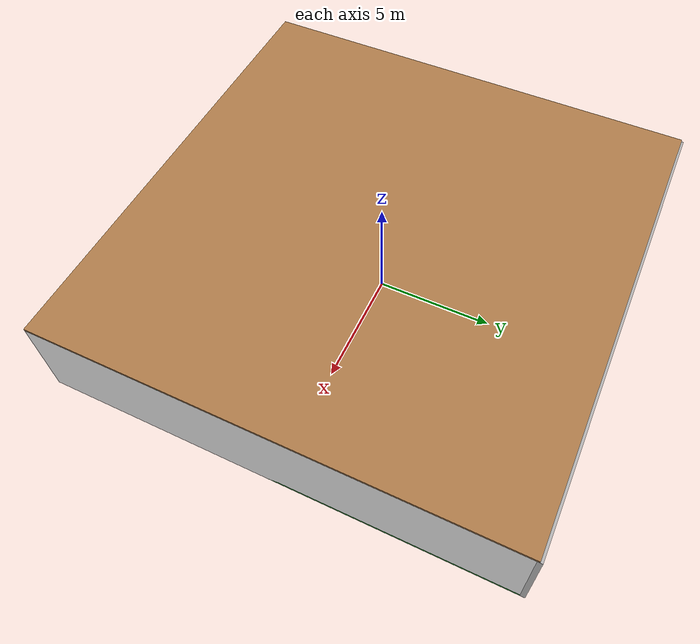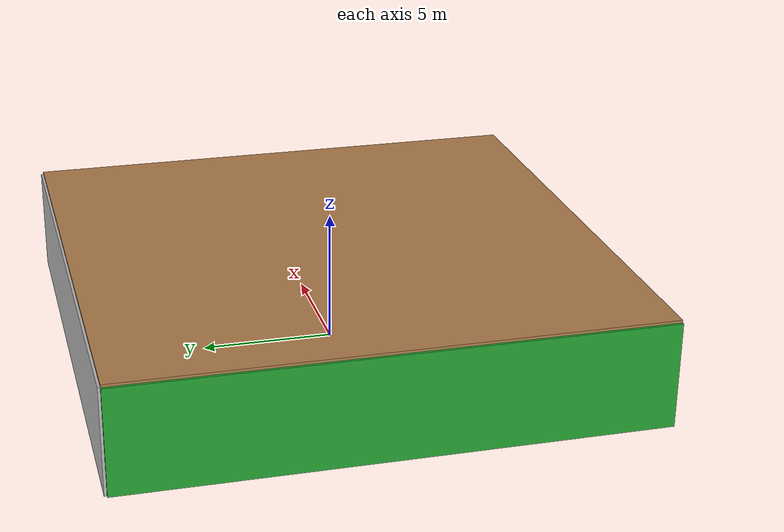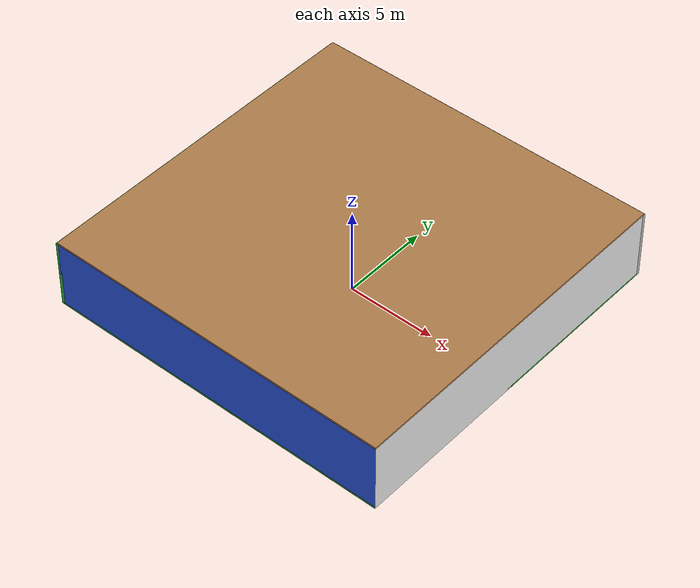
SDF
<sdf version="1.4">
 <world name="default">
  <physics type="ode">
   <max_step_size>0.001</max_step_size>
   <real_time_factor>1</real_time_factor>
   <real_time_update_rate>1000</real_time_update_rate>
   <gravity>0 0 -9.8</gravity>
  </physics>
  <scene><ambient>0.4 0.4 0.4 1</ambient><background>0.7 0.7 0.7 1</background><shadows>1</shadows></scene>
  <model name="Surrounding">
   <static>1</static>
   <link name="Ceiling">
    <collision name="Ceiling_Collision"><geometry><box><size>20 20 0.1</size></box></geometry></collision>
    <visual name="Ceiling_Visual">
     <geometry><box><size>20 20 0.1</size></box></geometry>
     <material>
      <script><uri>file://media/materials/scripts/gazebo.material</uri><name>Gazebo/Wood</name></script>
     </material>
    </visual>
    <pose>0 0 4.05 0 0 0</pose>
   </link>
   <link name="Wall_South">
    <collision name="Wall_South_Collision">
     <geometry><box><size>20 0 4</size></box></geometry>
     <pose>0 0 2 0 -0 0</pose>
    </collision>
    <visual name="Wall_South_Visual">
     <pose>0 0 2 0 -0 0</pose>
     <geometry><box><size>20 0 4</size></box></geometry>
     <material>
      <script><uri>file://media/materials/scripts/gazebo.material</uri><name>Gazebo/Blue</name></script>
     </material>
    </visual>
    <velocity_decay><linear>0</linear><angular>0</angular></velocity_decay>
    <pose>0 -10 0 0 -0 0</pose>
   </link>
   <link name="Wall_East">
    <collision name="Wall_21_Collision">
     <geometry><box><size>20 0 4</size></box></geometry>
     <pose>0 0 2 0 -0 0</pose>
    </collision>
    <visual name="Wall_21_Visual">
     <pose>0 0 2 0 -0 0</pose>
     <geometry><box><size>20 0 4</size></box></geometry>
     <material>
      <script><uri>file://media/materials/scripts/gazebo.material</uri><name>Gazebo/White</name></script>
     </material>
    </visual>
    <velocity_decay><linear>0</linear><angular>0</angular></velocity_decay>
    <pose>10 0 0 0 -0 1.5708</pose>
   </link>
   <link name="Wall_North">
    <collision name="Wall_22_Collision">
     <geometry><box><size>20 0.2 4</size></box></geometry>
     <pose>0 0 2 0 -0 0</pose>
    </collision>
    <visual name="Wall_22_Visual">
     <pose>0 0 2 0 -0 0</pose>
     <geometry><box><size>20 0.2 4</size></box></geometry>
     <material>
      <script><uri>file://media/materials/scripts/gazebo.material</uri><name>Gazebo/CloudySky</name></script>
     </material>
    </visual>
    <velocity_decay><linear>0</linear><angular>0</angular></velocity_decay>
    <pose>0 10 0 0 -0 0</pose>
   </link>
   <link name="Wall_West">
    <collision name="Wall_23_Collision">
     <geometry><box><size>20 0.2 4</size></box></geometry>
     <pose>0 0 2 0 -0 0</pose>
    </collision>
    <visual name="Wall_23_Visual">
     <pose>0 0 2 0 -0 0</pose>
     <geometry><box><size>20 0.2 4</size></box></geometry>
     <material>
      <script><uri>file://media/materials/scripts/gazebo.material</uri><name>Gazebo/Green</name></script>
     </material>
    </visual>
    <velocity_decay><linear>0</linear><angular>0</angular></velocity_decay>
    <pose>-10 0 0 0 0 -1.5708</pose>
   </link>
   <link name="Ground_link">
    <collision name="collision">
     <pose>0 0 .05 0 -0 0</pose>
     <geometry><box><size>20 20 0.1</size></box></geometry>
    </collision>
    <visual name="visual">
     <pose>0 0 .05 0 -0 0</pose>
     <geometry><box><size>20 20 0.1</size></box></geometry>
     <material>
      <script><uri>file://media/materials/scripts/gazebo.material</uri><name>Gazebo/GreenGlow</name></script>
     </material>
    </visual>
   </link>
   <static>1</static>
  </model>
  <spherical_coordinates>
   <surface_model>EARTH_WGS84</surface_model>
   <latitude_deg>0</latitude_deg>
   <longitude_deg>0</longitude_deg>
   <elevation>0</elevation>
   <heading_deg>0</heading_deg>
  </spherical_coordinates>
  <light name="lightball_0" type="diffuse">
   <diffuse>0.8 0.8 0.8 1</diffuse>
   <specular>0.2 0.2 0.2 1</specular>
   <attenuation>
    <range>100</range>
    <constant>0.7</constant>
    <linear>0.01</linear>
    <quadratic>0.001</quadratic>
   </attenuation>
   <direction>-0.5 0.1 -0.9</direction>
   <pose>-9.77380606333 9.20674432501 2.3978888615 0 0 0</pose>
  </light>
  <light name="lightball_1" type="diffuse">
   <diffuse>0.8 0.8 0.8 1</diffuse>
   <specular>0.2 0.2 0.2 1</specular>
   <attenuation>
    <range>100</range>
    <constant>0.7</constant>
    <linear>0.01</linear>
    <quadratic>0.001</quadratic>
   </attenuation>
   <direction>-0.5 0.1 -0.9</direction>
   <pose>-3.72078493821 -4.65202873356 2.81305977722 0 0 0</pose>
  </light>
  <light name="lightball_2" type="diffuse">
   <diffuse>0.8 0.8 0.8 1</diffuse>
   <specular>0.2 0.2 0.2 1</specular>
   <attenuation>
    <range>100</range>
    <constant>0.7</constant>
    <linear>0.01</linear>
    <quadratic>0.001</quadratic>
   </attenuation>
   <direction>-0.5 0.1 -0.9</direction>
   <pose>3.81103558983 -1.78771209196 2.99138667638 0 0 0</pose>
  </light>
  <light name="lightball_3" type="diffuse">
   <diffuse>0.8 0.8 0.8 1</diffuse>
   <specular>0.2 0.2 0.2 1</specular>
   <attenuation>
    <range>100</range>
    <constant>0.7</constant>
    <linear>0.01</linear>
    <quadratic>0.001</quadratic>
   </attenuation>
   <direction>-0.5 0.1 -0.9</direction>
   <pose>6.81101929176 -8.82437713219 1.16555474738 0 0 0</pose>
  </light>
  <light name="lightball_4" type="diffuse">
   <diffuse>0.8 0.8 0.8 1</diffuse>
   <specular>0.2 0.2 0.2 1</specular>
   <attenuation>
    <range>100</range>
    <constant>0.7</constant>
    <linear>0.01</linear>
    <quadratic>0.001</quadratic>
   </attenuation>
   <direction>-0.5 0.1 -0.9</direction>
   <pose>-1.79206361029 -8.61773625888 3.10620657354 0 0 0</pose>
  </light>
  <include><uri>model://cabinet</uri><pose>-7.07359237021 -6.97570454741 0 0 0 2.16892845064</pose></include>
  <include>
   <uri>model://textured_shapes</uri>
   <pose>-7.37936739375 2.20204091981 0 0 0 1.9881645518</pose>
  </include>
  <include><uri>model://table</uri><pose>-4.99984902362 -4.30307318034 0 0 0 2.51832914487</pose></include>
  <include><uri>model://cabinet</uri><pose>-5.12568235231 1.6111713579 0 0 0 2.8790423934</pose></include>
  <include><uri>model://table</uri><pose>-4.50671168444 4.92076377748 0 0 0 2.01994043246</pose></include>
  <include><uri>model://cabinet</uri><pose>-1.27976215327 3.84367548003 0 0 0 2.69238500578</pose></include>
  <include><uri>model://cabinet</uri><pose>1.00985672099 -7.36256343413 0 0 0 0.628852672074</pose></include>
  <include>
   <uri>model://robocup_3Dsim_goal</uri>
   <pose>5.30597917609 7.16835294986 0 0 0 0.987076761677</pose>
  </include>
  <include>
   <uri>model://construction_cone</uri>
   <pose>8.40188374438 7.82466886708 0 0 0 2.24595713039</pose>
  </include>
 </world>
</sdf>

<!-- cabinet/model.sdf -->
<sdf version="1.5">
  <model name="cabinet">
    <static>true</static>
    <link name="cabinet_bottom_plate">
      <inertial>
        <pose>0 0 -1 0 0 0</pose>
        <inertia>
          <ixx>2.050000</ixx>
          <ixy>0</ixy>
          <ixz>0</ixz>
          <iyy>2.050000</iyy>
          <iyz>0</iyz>
          <izz>2.050000</izz>
        </inertia>
        <mass>25.000000</mass>
      </inertial>
      <collision name="cabinet_bottom_plate_geom">
        <pose>0 0 0.010000 0 0 0</pose>
        <geometry>
          <box>
            <size>0.450000 0.450000 0.020000</size>
          </box>
        </geometry>
      </collision>
      <visual name="cabinet_bottom_plate_geom_visual">
        <pose>0 0 0.010000 0 0 0</pose>
        <geometry>
          <box>
            <size>0.450000 0.450000 0.020000</size>
          </box>
        </geometry>
        <material>
          <script>
            <uri>model://media/materials/scripts/gazebo.material</uri>
            <name>Gazebo/Wood</name>
          </script>
        </material>
      </visual>
      <collision name="cabinet_bottom_plate_geom_cabinet_back_plate">
        <pose>0.235000 0 0.510000 0 0 0</pose>
        <geometry>
          <box>
            <size>0.020000 0.450000 1.020000</size>
          </box>
        </geometry>
      </collision>
      <visual name="cabinet_bottom_plate_geom_cabinet_back_plate_visual">
        <pose>0.235000 0 0.510000 0 0 0</pose>
        <geometry>
          <box>
            <size>0.020000 0.450000 1.020000</size>
          </box>
        </geometry>
        <material>
          <script>
            <uri>model://media/materials/scripts/gazebo.material</uri>
            <name>Gazebo/Wood</name>
          </script>
        </material>
      </visual>
      <collision name="cabinet_bottom_plate_geom_cabinet_left_plate">
        <pose>0 0.235000 0.510000 0 0 0</pose>
        <geometry>
          <box>
            <size>0.450000 0.020000 1.020000</size>
          </box>
        </geometry>
      </collision>
      <visual name="cabinet_bottom_plate_geom_cabinet_left_plate_visual">
        <pose>0 0.235000 0.510000 0 0 0</pose>
        <geometry>
          <box>
            <size>0.450000 0.020000 1.020000</size>
          </box>
        </geometry>
        <material>
          <script>
            <uri>model://media/materials/scripts/gazebo.material</uri>
            <name>Gazebo/Wood</name>
          </script>
        </material>
      </visual>
      <collision name="cabinet_bottom_plate_geom_cabinet_middle_plate">
        <pose>0 0 0.510000 0 0 0</pose>
        <geometry>
          <box>
            <size>0.450000 0.450000 0.020000</size>
          </box>
        </geometry>
      </collision>
      <visual name="cabinet_bottom_plate_geom_cabinet_middle_plate_visual">
        <pose>0 0 0.510000 0 0 0</pose>
        <geometry>
          <box>
            <size>0.450000 0.450000 0.020000</size>
          </box>
        </geometry>
        <material>
          <script>
            <uri>model://media/materials/scripts/gazebo.material</uri>
            <name>Gazebo/Wood</name>
          </script>
        </material>
      </visual>
      <collision name="cabinet_bottom_plate_geom_cabinet_right_plate">
        <pose>0 -0.235000 0.510000 0 0 0</pose>
        <geometry>
          <box>
            <size>0.450000 0.020000 1.020000</size>
          </box>
        </geometry>
      </collision>
      <visual name="cabinet_bottom_plate_geom_cabinet_right_plate_visual">
        <pose>0 -0.235000 0.510000 0 0 0</pose>
        <geometry>
          <box>
            <size>0.450000 0.020000 1.020000</size>
          </box>
        </geometry>
        <material>
          <script>
            <uri>model://media/materials/scripts/gazebo.material</uri>
            <name>Gazebo/Wood</name>
          </script>
        </material>
      </visual>
      <collision name="cabinet_bottom_plate_geom_cabinet_top_plate">
        <pose>0 0 1.010000 0 0 0</pose>
        <geometry>
          <box>
            <size>0.450000 0.450000 0.020000</size>
          </box>
        </geometry>
      </collision>
      <visual name="cabinet_bottom_plate_geom_cabinet_top_plate_visual">
        <pose>0 0 1.010000 0 0 0</pose>
        <geometry>
          <box>
            <size>0.450000 0.450000 0.020000</size>
          </box>
        </geometry>
        <material>
          <script>
            <uri>model://media/materials/scripts/gazebo.material</uri>
            <name>Gazebo/Wood</name>
          </script>
        </material>
      </visual>
    </link>
  </model>
</sdf>

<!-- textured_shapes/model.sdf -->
<sdf version="1.6">
  <model name="textured_shapes">
    <pose>0 0 0.5 0 0 0</pose>
    <link name="box">
      <pose>0 -1.5 0 0 0 0</pose>
      <collision name="collision">
        <geometry>
          <box>
            <size>1 1 1</size>
          </box>
        </geometry>
      </collision>
      <visual name="visual">
        <geometry>
          <box>
            <size>1 1 1</size>
          </box>
        </geometry>
        <material>
          <script>
            <uri>model://../model_source/models/textured_shapes/materials/scripts</uri>
            <uri>model://../model_source/models/textured_shapes/materials/textures</uri>
            <name>TexturedShape/Squares</name>
          </script>
        </material>
      </visual>
    </link>
    <link name="sphere">
      <collision name="collision">
        <geometry>
          <sphere>
            <radius>0.5</radius>
          </sphere>
        </geometry>
      </collision>
      <visual name="visual">
        <geometry>
          <sphere>
            <radius>0.5</radius>
          </sphere>
        </geometry>
        <material>
          <script>
            <uri>model://../model_source/models/textured_shapes/materials/scripts</uri>
            <uri>model://../model_source/models/textured_shapes/materials/textures</uri>
            <name>TexturedShape/Squares</name>
          </script>
        </material>
      </visual>
    </link>
    <link name="cylinder">
      <pose>0 1.5 0 0 0 0</pose>
      <collision name="collision">
        <geometry>
          <cylinder>
            <radius>0.5</radius>
            <length>1</length>
          </cylinder>
        </geometry>
      </collision>
      <visual name="visual">
        <geometry>
          <cylinder>
            <radius>0.5</radius>
            <length>1</length>
          </cylinder>
        </geometry>
        <material>
          <script>
            <uri>model://../model_source/models/textured_shapes/materials/scripts</uri>
            <uri>model://../model_source/models/textured_shapes/materials/textures</uri>
            <name>TexturedShape/Squares</name>
          </script>
        </material>
      </visual>
    </link>
  </model>
</sdf>

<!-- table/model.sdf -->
<sdf version="1.5">
  <model name="table">
    <static>true</static>
    <link name="link">
      <collision name="surface">
        <pose>0 0 1.0 0 0 0</pose>
        <geometry>
          <box>
            <size>1.5 0.8 0.03</size>
          </box>
        </geometry>
        <surface>
          <friction>
            <ode>
              <mu>0.6</mu>
              <mu2>0.6</mu2>
            </ode>
          </friction>
        </surface>
      </collision>
      <visual name="visual1">
        <pose>0 0 1.0 0 0 0</pose>
        <geometry>
          <box>
            <size>1.5 0.8 0.03</size>
          </box>
        </geometry>
        <material>
          <script>
            <uri>model://media/materials/scripts/gazebo.material</uri>
            <name>Gazebo/Wood</name>
          </script>
        </material>
      </visual>
      <collision name="front_left_leg">
        <pose>0.68 0.38 0.5 0 0 0</pose>
        <geometry>
          <cylinder>
            <radius>0.02</radius>
            <length>1.0</length>
          </cylinder>
        </geometry>
      </collision>
      <visual name="front_left_leg">
        <pose>0.68 0.38 0.5 0 0 0</pose>
        <geometry>
          <cylinder>
            <radius>0.02</radius>
            <length>1.0</length>
          </cylinder>
        </geometry>
        <material>
          <script>
            <uri>model://media/materials/scripts/gazebo.material</uri>
            <name>Gazebo/Grey</name>
          </script>
        </material>
      </visual>
      <collision name="front_right_leg">
        <pose>0.68 -0.38 0.5 0 0 0</pose>
        <geometry>
          <cylinder>
            <radius>0.02</radius>
            <length>1.0</length>
          </cylinder>
        </geometry>
      </collision>
      <visual name="front_right_leg">
        <pose>0.68 -0.38 0.5 0 0 0</pose>
        <geometry>
          <cylinder>
            <radius>0.02</radius>
            <length>1.0</length>
          </cylinder>
        </geometry>
        <material>
          <script>
            <uri>model://media/materials/scripts/gazebo.material</uri>
            <name>Gazebo/Grey</name>
          </script>
        </material>
      </visual>
      <collision name="back_right_leg">
        <pose>-0.68 -0.38 0.5 0 0 0</pose>
        <geometry>
          <cylinder>
            <radius>0.02</radius>
            <length>1.0</length>
          </cylinder>
        </geometry>
      </collision>
      <visual name="back_right_leg">
        <pose>-0.68 -0.38 0.5 0 0 0</pose>
        <geometry>
          <cylinder>
            <radius>0.02</radius>
            <length>1.0</length>
          </cylinder>
        </geometry>
        <material>
          <script>
            <uri>model://media/materials/scripts/gazebo.material</uri>
            <name>Gazebo/Grey</name>
          </script>
        </material>
      </visual>
      <collision name="back_left_leg">
        <pose>-0.68 0.38 0.5 0 0 0</pose>
        <geometry>
          <cylinder>
            <radius>0.02</radius>
            <length>1.0</length>
          </cylinder>
        </geometry>
      </collision>
      <visual name="back_left_leg">
        <pose>-0.68 0.38 0.5 0 0 0</pose>
        <geometry>
          <cylinder>
            <radius>0.02</radius>
            <length>1.0</length>
          </cylinder>
        </geometry>
        <material>
          <script>
            <uri>model://media/materials/scripts/gazebo.material</uri>
            <name>Gazebo/Grey</name>
          </script>
        </material>
      </visual>
    </link>
  </model>
</sdf>

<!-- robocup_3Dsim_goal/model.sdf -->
<sdf version="1.5">
  <model name="robocup_3d_goal">
    <static>true</static>
    <link name="left_post">
      <pose>0 1.05 0.45 0 0 0</pose>
      <collision name="collision">
        <geometry>
          <cylinder>
            <radius>0.05</radius>
            <length>0.9</length>
          </cylinder>
        </geometry>
      </collision>
      <visual name="visual">
        <geometry>
          <cylinder>
            <radius>0.05</radius>
            <length>0.9</length>
          </cylinder>
        </geometry>
        <material>
          <script>
            <uri>file://media/materials/scripts/gazebo.material</uri>
            <name>Gazebo/ZincYellow</name>
          </script>
        </material>
      </visual>
    </link>
    <link name="left_support_horiz_lower">
      <pose>0.30 1.05 0.01 0 0 0</pose>
      <collision name="collision">
        <geometry>
          <box>
            <size>0.50 0.02 0.02</size>
          </box>
        </geometry>
      </collision>
      <visual name="visual">
        <geometry>
          <box>
            <size>0.50 0.02 0.02</size>
          </box>
        </geometry>
        <material>
          <script>
            <uri>file://media/materials/scripts/gazebo.material</uri>
            <name>Gazebo/White</name>
          </script>
        </material>
      </visual>
    </link>
    <link name="left_support_horiz_upper">
      <pose>0.30 1.05 0.79 0 0 0</pose>
      <collision name="collision">
        <geometry>
          <box>
            <size>0.50 0.02 0.02</size>
          </box>
        </geometry>
      </collision>
      <visual name="visual">
        <geometry>
          <box>
            <size>0.50 0.02 0.02</size>
          </box>
        </geometry>
        <material>
          <script>
            <uri>file://media/materials/scripts/gazebo.material</uri>
            <name>Gazebo/White</name>
          </script>
        </material>
      </visual>
    </link>
    <link name="left_support_vertical">
      <pose>0.56 1.05 0.4 0 1.5708 0</pose>
      <collision name="collision">
        <geometry>
          <box>
            <size>0.80 0.02 0.02</size>
          </box>
        </geometry>
      </collision>
      <visual name="visual">
        <geometry>
          <box>
            <size>0.80 0.02 0.02</size>
          </box>
        </geometry>
        <material>
          <script>
            <uri>file://media/materials/scripts/gazebo.material</uri>
            <name>Gazebo/White</name>
          </script>
        </material>
      </visual>
    </link>
    <link name="right_support_horiz_lower">
      <pose>0.30 -1.05 0.01 0 0 0</pose>
      <collision name="collision">
        <geometry>
          <box>
            <size>0.50 0.02 0.02</size>
          </box>
        </geometry>
      </collision>
      <visual name="visual">
        <geometry>
          <box>
            <size>0.50 0.02 0.02</size>
          </box>
        </geometry>
        <material>
          <script>
            <uri>file://media/materials/scripts/gazebo.material</uri>
            <name>Gazebo/White</name>
          </script>
        </material>
      </visual>
    </link>
    <link name="right_support_horiz_upper">
      <pose>0.30 -1.05 0.79 0 0 0</pose>
      <collision name="collision">
        <geometry>
          <box>
            <size>0.50 0.02 0.02</size>
          </box>
        </geometry>
      </collision>
      <visual name="visual">
        <geometry>
          <box>
            <size>0.50 0.02 0.02</size>
          </box>
        </geometry>
        <material>
          <script>
            <uri>file://media/materials/scripts/gazebo.material</uri>
            <name>Gazebo/White</name>
          </script>
        </material>
      </visual>
    </link>
    <link name="right_support_vertical">
      <pose>0.56 -1.05 0.4 0 1.5708 0</pose>
      <collision name="collision">
        <geometry>
          <box>
            <size>0.80 0.02 0.02</size>
          </box>
        </geometry>
      </collision>
      <visual name="visual">
        <geometry>
          <box>
            <size>0.80 0.02 0.02</size>
          </box>
        </geometry>
        <material>
          <script>
            <uri>file://media/materials/scripts/gazebo.material</uri>
            <name>Gazebo/White</name>
          </script>
        </material>
      </visual>
    </link>
    <link name="center_support_horiz_lower">
      <pose>0.56 0 0.01 0 1.5708 0</pose>
      <collision name="collision">
        <geometry>
          <box>
            <size>0.02 2.08 0.02</size>
          </box>
        </geometry>
      </collision>
      <visual name="visual">
        <geometry>
          <box>
            <size>0.02 2.08 0.02</size>
          </box>
        </geometry>
        <material>
          <script>
            <uri>file://media/materials/scripts/gazebo.material</uri>
            <name>Gazebo/White</name>
          </script>
        </material>
      </visual>
    </link>
    <link name="center_support_horiz_upper">
      <pose>0.56 0 0.79 0 1.5708 0</pose>
      <collision name="collision">
        <geometry>
          <box>
            <size>0.02 2.08 0.02</size>
          </box>
        </geometry>
      </collision>
      <visual name="visual">
        <geometry>
          <box>
            <size>0.02 2.08 0.02</size>
          </box>
        </geometry>
        <material>
          <script>
            <uri>file://media/materials/scripts/gazebo.material</uri>
            <name>Gazebo/White</name>
          </script>
        </material>
      </visual>
    </link>
    <link name="right_post">
      <pose>0 -1.05 0.45 0 0 0</pose>
      <collision name="collision">
        <geometry>
          <cylinder>
            <radius>0.05</radius>
            <length>0.9</length>
          </cylinder>
        </geometry>
      </collision>
      <visual name="visual">
        <geometry>
          <cylinder>
            <radius>0.05</radius>
            <length>0.9</length>
          </cylinder>
        </geometry>
        <material>
          <script>
            <uri>file://media/materials/scripts/gazebo.material</uri>
            <name>Gazebo/ZincYellow</name>
          </script>
        </material>
      </visual>
    </link>
    <link name="crossbar">
      <pose>0 0 0.85 1.57 1.57 0</pose>
      <collision name="collision">
        <geometry>
          <cylinder>
            <radius>0.05</radius>
            <length>2.0</length>
          </cylinder>
        </geometry>
      </collision>
      <visual name="visual">
        <geometry>
          <cylinder>
            <radius>0.05</radius>
            <length>2.0</length>
          </cylinder>
        </geometry>
        <material>
          <script>
            <uri>file://media/materials/scripts/gazebo.material</uri>
            <name>Gazebo/ZincYellow</name>
          </script>
        </material>
      </visual>
    </link>
    <link name="center_net">
      <pose>0.56 0 0.40 0 0 0</pose>
      <collision name="collision">
        <geometry>
          <box>
            <size>0.01 2.1 0.80</size>
          </box>
        </geometry>
      </collision>
      <visual name="visual">
        <geometry>
          <box>
            <size>0.01 2.1 0.80</size>
          </box>
        </geometry>
        <material>
          <script>
            <uri>model://../model_source/models/robocup09_spl_field/materials/scripts/</uri>
            <uri>model://../model_source/models/robocup09_spl_field/materials/textures/</uri>
            <name>RoboCup/Net</name>
          </script>
        </material>
      </visual>
    </link>
    <link name="left_net">
      <pose>0.30 1.05 0.40 0 0 0</pose>
      <collision name="collision">
        <geometry>
          <box>
            <size>0.50 0.01 0.76</size>
          </box>
        </geometry>
      </collision>
      <visual name="visual">
        <geometry>
          <box>
            <size>0.50 0.01 0.76</size>
          </box>
        </geometry>
        <material>
          <script>
            <uri>model://../model_source/models/robocup09_spl_field/materials/scripts/</uri>
            <uri>model://../model_source/models/robocup09_spl_field/materials/textures/</uri>
            <name>RoboCup/Net</name>
          </script>
        </material>
      </visual>
    </link>
    <link name="right_net">
      <pose>0.30 -1.05 0.40 0 0 0</pose>
      <collision name="collision">
        <geometry>
          <box>
            <size>0.50 0.01 0.76</size>
          </box>
        </geometry>
      </collision>
      <visual name="visual">
        <geometry>
          <box>
            <size>0.50 0.01 0.76</size>
          </box>
        </geometry>
        <material>
          <script>
            <uri>model://../model_source/models/robocup09_spl_field/materials/scripts/</uri>
            <uri>model://../model_source/models/robocup09_spl_field/materials/textures/</uri>
            <name>RoboCup/Net</name>
          </script>
        </material>
      </visual>
    </link>
  </model>
</sdf>

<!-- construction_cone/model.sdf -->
<sdf version="1.5">
  <model name="Construction Cone">
    <link name="link">
      <collision name="collision">
        <geometry>
          <mesh>
            <scale>10 10 10</scale>
            <uri>file://isr-testbed/construction_cone/meshes/construction_cone.dae</uri>
          </mesh>
        </geometry>
      </collision>
      <visual name="visual">
        <geometry>
          <mesh>
            <scale>10 10 10</scale>
            <uri>file://isr-testbed/construction_cone/meshes/construction_cone.dae</uri>
          </mesh>
        </geometry>
      </visual>
    </link>
  </model>
</sdf>
